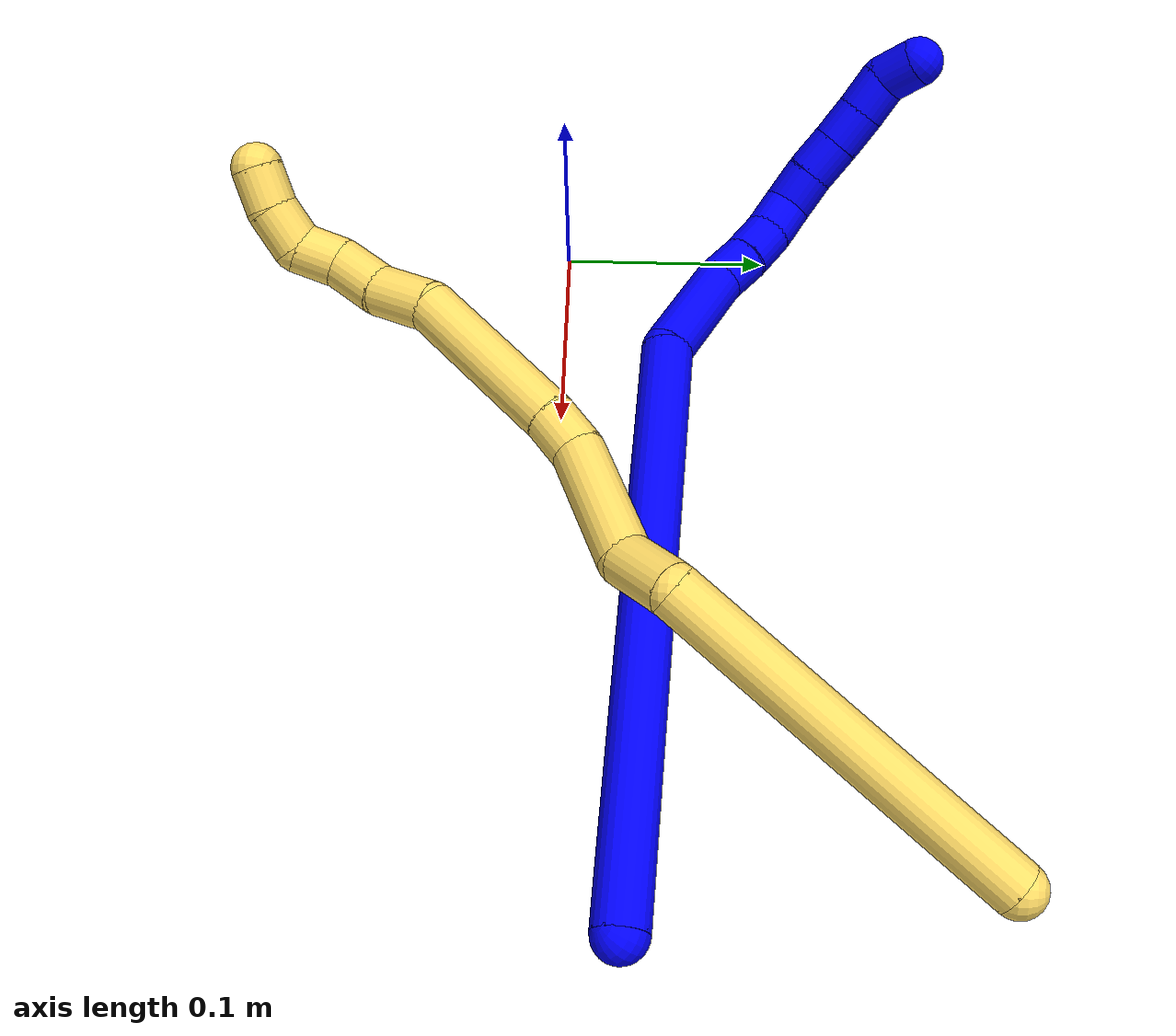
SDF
<sdf version="1.7">
 <world name="default">
  <model name="1">
   <static>0</static>
   <link name="1">
    <collision name="collision-cylinder-e_1_1_4">
     <pose>-0.137871 0.019291 0.017713 -0.828016 -1.38308 0.697822</pose>
     <geometry><cylinder><radius>0.0125</radius><length>0.280673</length></cylinder></geometry>
     <surface>
      <friction><ode><mu>1.16</mu><mu2>1.16</mu2><slip1>0</slip1><slip2>0</slip2></ode></friction>
      <contact><ode><kp>1e+06</kp><kd>1</kd><max_vel>0</max_vel><min_depth>0.001</min_depth></ode></contact>
     </surface>
    </collision>
    <visual name="visual-cylinder-e_1_1_4">
     <pose>-0.137871 0.019291 0.017713 -0.828016 -1.38308 0.697822</pose>
     <geometry><cylinder><radius>0.0125</radius><length>0.280673</length></cylinder></geometry>
     <material><ambient>0 0 1 1</ambient></material>
    </visual>
    <collision name="collision-cylinder-e_2_4_5">
     <pose>-0.302172 0.045808 0.026489 -2.46166 -1.16062 2.15212</pose>
     <geometry><cylinder><radius>0.0125</radius><length>0.057641</length></cylinder></geometry>
     <surface>
      <friction><ode><mu>1.16</mu><mu2>1.16</mu2><slip1>0</slip1><slip2>0</slip2></ode></friction>
      <contact><ode><kp>1e+06</kp><kd>1</kd><max_vel>0</max_vel><min_depth>0.001</min_depth></ode></contact>
     </surface>
    </collision>
    <visual name="visual-cylinder-e_2_4_5">
     <pose>-0.302172 0.045808 0.026489 -2.46166 -1.16062 2.15212</pose>
     <geometry><cylinder><radius>0.0125</radius><length>0.057641</length></cylinder></geometry>
     <material><ambient>0 0 1 1</ambient></material>
    </visual>
    <collision name="collision-cylinder-e_3_5_6">
     <pose>-0.336591 0.058175 0.013729 -2.21019 -0.894847 1.52462</pose>
     <geometry><cylinder><radius>0.0125</radius><length>0.020479</length></cylinder></geometry>
     <surface>
      <friction><ode><mu>1.16</mu><mu2>1.16</mu2><slip1>0</slip1><slip2>0</slip2></ode></friction>
      <contact><ode><kp>1e+06</kp><kd>1</kd><max_vel>0</max_vel><min_depth>0.001</min_depth></ode></contact>
     </surface>
    </collision>
    <visual name="visual-cylinder-e_3_5_6">
     <pose>-0.336591 0.058175 0.013729 -2.21019 -0.894847 1.52462</pose>
     <geometry><cylinder><radius>0.0125</radius><length>0.020479</length></cylinder></geometry>
     <material><ambient>0 0 1 1</ambient></material>
    </visual>
    <collision name="collision-cylinder-e_4_6_7">
     <pose>-0.353356 0.067948 0.006666 -2.18118 -0.998525 1.61669</pose>
     <geometry><cylinder><radius>0.0125</radius><length>0.020881</length></cylinder></geometry>
     <surface>
      <friction><ode><mu>1.16</mu><mu2>1.16</mu2><slip1>0</slip1><slip2>0</slip2></ode></friction>
      <contact><ode><kp>1e+06</kp><kd>1</kd><max_vel>0</max_vel><min_depth>0.001</min_depth></ode></contact>
     </surface>
    </collision>
    <visual name="visual-cylinder-e_4_6_7">
     <pose>-0.353356 0.067948 0.006666 -2.18118 -0.998525 1.61669</pose>
     <geometry><cylinder><radius>0.0125</radius><length>0.020881</length></cylinder></geometry>
     <material><ambient>0 0 1 1</ambient></material>
    </visual>
    <collision name="collision-cylinder-e_5_7_8">
     <pose>-0.370454 0.077964 0.001933 -1.84121 -0.979668 1.2229</pose>
     <geometry><cylinder><radius>0.0125</radius><length>0.020045</length></cylinder></geometry>
     <surface>
      <friction><ode><mu>1.16</mu><mu2>1.16</mu2><slip1>0</slip1><slip2>0</slip2></ode></friction>
      <contact><ode><kp>1e+06</kp><kd>1</kd><max_vel>0</max_vel><min_depth>0.001</min_depth></ode></contact>
     </surface>
    </collision>
    <visual name="visual-cylinder-e_5_7_8">
     <pose>-0.370454 0.077964 0.001933 -1.84121 -0.979668 1.2229</pose>
     <geometry><cylinder><radius>0.0125</radius><length>0.020045</length></cylinder></geometry>
     <material><ambient>0 0 1 1</ambient></material>
    </visual>
    <collision name="collision-cylinder-e_6_8_9">
     <pose>-0.383831 0.092052 0.001213 -1.48228 -0.524315 0.481616</pose>
     <geometry><cylinder><radius>0.0125</radius><length>0.020192</length></cylinder></geometry>
     <surface>
      <friction><ode><mu>1.16</mu><mu2>1.16</mu2><slip1>0</slip1><slip2>0</slip2></ode></friction>
      <contact><ode><kp>1e+06</kp><kd>1</kd><max_vel>0</max_vel><min_depth>0.001</min_depth></ode></contact>
     </surface>
    </collision>
    <visual name="visual-cylinder-e_6_8_9">
     <pose>-0.383831 0.092052 0.001213 -1.48228 -0.524315 0.481616</pose>
     <geometry><cylinder><radius>0.0125</radius><length>0.020192</length></cylinder></geometry>
     <material><ambient>0 0 1 1</ambient></material>
    </visual>
    <collision name="collision-cylinder-e_7_9_10">
     <pose>-0.393488 0.109648 0.002005 -1.56868 -0.477736 0.476765</pose>
     <geometry><cylinder><radius>0.0125</radius><length>0.020023</length></cylinder></geometry>
     <surface>
      <friction><ode><mu>1.16</mu><mu2>1.16</mu2><slip1>0</slip1><slip2>0</slip2></ode></friction>
      <contact><ode><kp>1e+06</kp><kd>1</kd><max_vel>0</max_vel><min_depth>0.001</min_depth></ode></contact>
     </surface>
    </collision>
    <visual name="visual-cylinder-e_7_9_10">
     <pose>-0.393488 0.109648 0.002005 -1.56868 -0.477736 0.476765</pose>
     <geometry><cylinder><radius>0.0125</radius><length>0.020023</length></cylinder></geometry>
     <material><ambient>0 0 1 1</ambient></material>
    </visual>
    <collision name="collision-cylinder-e_8_10_11">
     <pose>-0.402715 0.127424 0.002408 -1.52756 -0.47942 0.45985</pose>
     <geometry><cylinder><radius>0.0125</radius><length>0.020048</length></cylinder></geometry>
     <surface>
      <friction><ode><mu>1.16</mu><mu2>1.16</mu2><slip1>0</slip1><slip2>0</slip2></ode></friction>
      <contact><ode><kp>1e+06</kp><kd>1</kd><max_vel>0</max_vel><min_depth>0.001</min_depth></ode></contact>
     </surface>
    </collision>
    <visual name="visual-cylinder-e_8_10_11">
     <pose>-0.402715 0.127424 0.002408 -1.52756 -0.47942 0.45985</pose>
     <geometry><cylinder><radius>0.0125</radius><length>0.020048</length></cylinder></geometry>
     <material><ambient>0 0 1 1</ambient></material>
    </visual>
    <collision name="collision-cylinder-e_9_11_12">
     <pose>-0.411768 0.145226 0.003741 -1.46478 -0.458835 0.413978</pose>
     <geometry><cylinder><radius>0.0125</radius><length>0.020003</length></cylinder></geometry>
     <surface>
      <friction><ode><mu>1.16</mu><mu2>1.16</mu2><slip1>0</slip1><slip2>0</slip2></ode></friction>
      <contact><ode><kp>1e+06</kp><kd>1</kd><max_vel>0</max_vel><min_depth>0.001</min_depth></ode></contact>
     </surface>
    </collision>
    <visual name="visual-cylinder-e_9_11_12">
     <pose>-0.411768 0.145226 0.003741 -1.46478 -0.458835 0.413978</pose>
     <geometry><cylinder><radius>0.0125</radius><length>0.020003</length></cylinder></geometry>
     <material><ambient>0 0 1 1</ambient></material>
    </visual>
    <collision name="collision-cylinder-e_10_12_2">
     <pose>-0.415349 0.164022 0.003335 -1.70711 0.084923 -0.097348</pose>
     <geometry><cylinder><radius>0.0125</radius><length>0.020014</length></cylinder></geometry>
     <surface>
      <friction><ode><mu>1.16</mu><mu2>1.16</mu2><slip1>0</slip1><slip2>0</slip2></ode></friction>
      <contact><ode><kp>1e+06</kp><kd>1</kd><max_vel>0</max_vel><min_depth>0.001</min_depth></ode></contact>
     </surface>
    </collision>
    <visual name="visual-cylinder-e_10_12_2">
     <pose>-0.415349 0.164022 0.003335 -1.70711 0.084923 -0.097348</pose>
     <geometry><cylinder><radius>0.0125</radius><length>0.020014</length></cylinder></geometry>
     <material><ambient>0 0 1 1</ambient></material>
    </visual>
    <collision name="collision-sphere-2">
     <pose>-0.4145 0.1739 0.00198 0 -0 0</pose>
     <geometry><sphere><radius>0.0125</radius></sphere></geometry>
     <surface>
      <friction><ode><mu>1.16</mu><mu2>1.16</mu2><slip1>0</slip1><slip2>0</slip2></ode></friction>
      <contact><ode><kp>1e+06</kp><kd>1</kd><max_vel>0</max_vel><min_depth>0.001</min_depth></ode></contact>
     </surface>
    </collision>
    <visual name="visual-sphere-2">
     <pose>-0.4145 0.1739 0.00198 0 -0 0</pose>
     <geometry><sphere><radius>0.0125</radius></sphere></geometry>
     <material><ambient>0 0 1 1</ambient></material>
    </visual>
    <collision name="collision-sphere-12">
     <pose>-0.416198 0.154143 0.00469 0 -0 0</pose>
     <geometry><sphere><radius>0.0125</radius></sphere></geometry>
     <surface>
      <friction><ode><mu>1.16</mu><mu2>1.16</mu2><slip1>0</slip1><slip2>0</slip2></ode></friction>
      <contact><ode><kp>1e+06</kp><kd>1</kd><max_vel>0</max_vel><min_depth>0.001</min_depth></ode></contact>
     </surface>
    </collision>
    <visual name="visual-sphere-12">
     <pose>-0.416198 0.154143 0.00469 0 -0 0</pose>
     <geometry><sphere><radius>0.0125</radius></sphere></geometry>
     <material><ambient>0 0 1 1</ambient></material>
    </visual>
    <collision name="collision-sphere-11">
     <pose>-0.407338 0.13631 0.002792 0 -0 0</pose>
     <geometry><sphere><radius>0.0125</radius></sphere></geometry>
     <surface>
      <friction><ode><mu>1.16</mu><mu2>1.16</mu2><slip1>0</slip1><slip2>0</slip2></ode></friction>
      <contact><ode><kp>1e+06</kp><kd>1</kd><max_vel>0</max_vel><min_depth>0.001</min_depth></ode></contact>
     </surface>
    </collision>
    <visual name="visual-sphere-11">
     <pose>-0.407338 0.13631 0.002792 0 -0 0</pose>
     <geometry><sphere><radius>0.0125</radius></sphere></geometry>
     <material><ambient>0 0 1 1</ambient></material>
    </visual>
    <collision name="collision-sphere-10">
     <pose>-0.398091 0.118539 0.002024 0 -0 0</pose>
     <geometry><sphere><radius>0.0125</radius></sphere></geometry>
     <surface>
      <friction><ode><mu>1.16</mu><mu2>1.16</mu2><slip1>0</slip1><slip2>0</slip2></ode></friction>
      <contact><ode><kp>1e+06</kp><kd>1</kd><max_vel>0</max_vel><min_depth>0.001</min_depth></ode></contact>
     </surface>
    </collision>
    <visual name="visual-sphere-10">
     <pose>-0.398091 0.118539 0.002024 0 -0 0</pose>
     <geometry><sphere><radius>0.0125</radius></sphere></geometry>
     <material><ambient>0 0 1 1</ambient></material>
    </visual>
    <collision name="collision-sphere-9">
     <pose>-0.388885 0.100758 0.001986 0 -0 0</pose>
     <geometry><sphere><radius>0.0125</radius></sphere></geometry>
     <surface>
      <friction><ode><mu>1.16</mu><mu2>1.16</mu2><slip1>0</slip1><slip2>0</slip2></ode></friction>
      <contact><ode><kp>1e+06</kp><kd>1</kd><max_vel>0</max_vel><min_depth>0.001</min_depth></ode></contact>
     </surface>
    </collision>
    <visual name="visual-sphere-9">
     <pose>-0.388885 0.100758 0.001986 0 -0 0</pose>
     <geometry><sphere><radius>0.0125</radius></sphere></geometry>
     <material><ambient>0 0 1 1</ambient></material>
    </visual>
    <collision name="collision-sphere-4">
     <pose>-0.275742 0.038582 0.035426 0 -0 0</pose>
     <geometry><sphere><radius>0.0125</radius></sphere></geometry>
     <surface>
      <friction><ode><mu>1.16</mu><mu2>1.16</mu2><slip1>0</slip1><slip2>0</slip2></ode></friction>
      <contact><ode><kp>1e+06</kp><kd>1</kd><max_vel>0</max_vel><min_depth>0.001</min_depth></ode></contact>
     </surface>
    </collision>
    <visual name="visual-sphere-4">
     <pose>-0.275742 0.038582 0.035426 0 -0 0</pose>
     <geometry><sphere><radius>0.0125</radius></sphere></geometry>
     <material><ambient>0 0 1 1</ambient></material>
    </visual>
    <collision name="collision-sphere-1">
     <geometry><sphere><radius>0.0125</radius></sphere></geometry>
     <surface>
      <friction><ode><mu>1.16</mu><mu2>1.16</mu2><slip1>0</slip1><slip2>0</slip2></ode></friction>
      <contact><ode><kp>1e+06</kp><kd>1</kd><max_vel>0</max_vel><min_depth>0.001</min_depth></ode></contact>
     </surface>
    </collision>
    <visual name="visual-sphere-1">
     <geometry><sphere><radius>0.0125</radius></sphere></geometry>
     <material><ambient>0 0 1 1</ambient></material>
    </visual>
    <collision name="collision-sphere-8">
     <pose>-0.378776 0.083347 0.000441 0 -0 0</pose>
     <geometry><sphere><radius>0.0125</radius></sphere></geometry>
     <surface>
      <friction><ode><mu>1.16</mu><mu2>1.16</mu2><slip1>0</slip1><slip2>0</slip2></ode></friction>
      <contact><ode><kp>1e+06</kp><kd>1</kd><max_vel>0</max_vel><min_depth>0.001</min_depth></ode></contact>
     </surface>
    </collision>
    <visual name="visual-sphere-8">
     <pose>-0.378776 0.083347 0.000441 0 -0 0</pose>
     <geometry><sphere><radius>0.0125</radius></sphere></geometry>
     <material><ambient>0 0 1 1</ambient></material>
    </visual>
    <collision name="collision-sphere-5">
     <pose>-0.328602 0.053034 0.017552 0 -0 0</pose>
     <geometry><sphere><radius>0.0125</radius></sphere></geometry>
     <surface>
      <friction><ode><mu>1.16</mu><mu2>1.16</mu2><slip1>0</slip1><slip2>0</slip2></ode></friction>
      <contact><ode><kp>1e+06</kp><kd>1</kd><max_vel>0</max_vel><min_depth>0.001</min_depth></ode></contact>
     </surface>
    </collision>
    <visual name="visual-sphere-5">
     <pose>-0.328602 0.053034 0.017552 0 -0 0</pose>
     <geometry><sphere><radius>0.0125</radius></sphere></geometry>
     <material><ambient>0 0 1 1</ambient></material>
    </visual>
    <collision name="collision-sphere-6">
     <pose>-0.344579 0.063315 0.009906 0 -0 0</pose>
     <geometry><sphere><radius>0.0125</radius></sphere></geometry>
     <surface>
      <friction><ode><mu>1.16</mu><mu2>1.16</mu2><slip1>0</slip1><slip2>0</slip2></ode></friction>
      <contact><ode><kp>1e+06</kp><kd>1</kd><max_vel>0</max_vel><min_depth>0.001</min_depth></ode></contact>
     </surface>
    </collision>
    <visual name="visual-sphere-6">
     <pose>-0.344579 0.063315 0.009906 0 -0 0</pose>
     <geometry><sphere><radius>0.0125</radius></sphere></geometry>
     <material><ambient>0 0 1 1</ambient></material>
    </visual>
    <collision name="collision-sphere-7">
     <pose>-0.362133 0.072581 0.003425 0 -0 0</pose>
     <geometry><sphere><radius>0.0125</radius></sphere></geometry>
     <surface>
      <friction><ode><mu>1.16</mu><mu2>1.16</mu2><slip1>0</slip1><slip2>0</slip2></ode></friction>
      <contact><ode><kp>1e+06</kp><kd>1</kd><max_vel>0</max_vel><min_depth>0.001</min_depth></ode></contact>
     </surface>
    </collision>
    <visual name="visual-sphere-7">
     <pose>-0.362133 0.072581 0.003425 0 -0 0</pose>
     <geometry><sphere><radius>0.0125</radius></sphere></geometry>
     <material><ambient>0 0 1 1</ambient></material>
    </visual>
    <inertial>
     <pose>-0.236128 0.050049 0.014424 0 -0 0</pose>
     <mass>0.5</mass>
     <inertia>
      <ixx>0.000468</ixx>
      <ixy>0</ixy>
      <ixz>0</ixz>
      <iyy>0.00209</iyy>
      <iyz>0</iyz>
      <izz>0.001576</izz>
     </inertia>
    </inertial>
   </link>
   <pose>0.351186 0.033736 0.011631 0.845478 -0.155348 -0.064842</pose>
  </model>
  <model name="5">
   <static>0</static>
   <link name="5">
    <collision name="collision-cylinder-e_1_1_4">
     <pose>0.00503 -0.054079 -0.072848 2.50301 0.055382 0.167169</pose>
     <geometry><cylinder><radius>0.0125</radius><length>0.181732</length></cylinder></geometry>
     <surface>
      <friction><ode><mu>1.16</mu><mu2>1.16</mu2><slip1>0</slip1><slip2>0</slip2></ode></friction>
      <contact><ode><kp>1e+06</kp><kd>1</kd><max_vel>0</max_vel><min_depth>0.001</min_depth></ode></contact>
     </surface>
    </collision>
    <visual name="visual-cylinder-e_1_1_4">
     <pose>0.00503 -0.054079 -0.072848 2.50301 0.055382 0.167169</pose>
     <geometry><cylinder><radius>0.0125</radius><length>0.181732</length></cylinder></geometry>
     <material><ambient>1 0.858824 0.4 1</ambient></material>
    </visual>
    <collision name="collision-cylinder-e_2_4_5">
     <pose>0.002171 -0.112694 -0.157628 2.77821 -0.55354 -1.99342</pose>
     <geometry><cylinder><radius>0.0125</radius><length>0.030011</length></cylinder></geometry>
     <surface>
      <friction><ode><mu>1.16</mu><mu2>1.16</mu2><slip1>0</slip1><slip2>0</slip2></ode></friction>
      <contact><ode><kp>1e+06</kp><kd>1</kd><max_vel>0</max_vel><min_depth>0.001</min_depth></ode></contact>
     </surface>
    </collision>
    <visual name="visual-cylinder-e_2_4_5">
     <pose>0.002171 -0.112694 -0.157628 2.77821 -0.55354 -1.99342</pose>
     <geometry><cylinder><radius>0.0125</radius><length>0.030011</length></cylinder></geometry>
     <material><ambient>1 0.858824 0.4 1</ambient></material>
    </visual>
    <collision name="collision-cylinder-e_3_5_6">
     <pose>-0.02188 -0.138351 -0.185085 2.20473 -0.552514 -1.02143</pose>
     <geometry><cylinder><radius>0.0125</radius><length>0.06159</length></cylinder></geometry>
     <surface>
      <friction><ode><mu>1.16</mu><mu2>1.16</mu2><slip1>0</slip1><slip2>0</slip2></ode></friction>
      <contact><ode><kp>1e+06</kp><kd>1</kd><max_vel>0</max_vel><min_depth>0.001</min_depth></ode></contact>
     </surface>
    </collision>
    <visual name="visual-cylinder-e_3_5_6">
     <pose>-0.02188 -0.138351 -0.185085 2.20473 -0.552514 -1.02143</pose>
     <geometry><cylinder><radius>0.0125</radius><length>0.06159</length></cylinder></geometry>
     <material><ambient>1 0.858824 0.4 1</ambient></material>
    </visual>
    <collision name="collision-cylinder-e_4_6_7">
     <pose>-0.040675 -0.166651 -0.20837 2.39488 -0.244149 -0.607023</pose>
     <geometry><cylinder><radius>0.0125</radius><length>0.021788</length></cylinder></geometry>
     <surface>
      <friction><ode><mu>1.16</mu><mu2>1.16</mu2><slip1>0</slip1><slip2>0</slip2></ode></friction>
      <contact><ode><kp>1e+06</kp><kd>1</kd><max_vel>0</max_vel><min_depth>0.001</min_depth></ode></contact>
     </surface>
    </collision>
    <visual name="visual-cylinder-e_4_6_7">
     <pose>-0.040675 -0.166651 -0.20837 2.39488 -0.244149 -0.607023</pose>
     <geometry><cylinder><radius>0.0125</radius><length>0.021788</length></cylinder></geometry>
     <material><ambient>1 0.858824 0.4 1</ambient></material>
    </visual>
    <collision name="collision-cylinder-e_5_7_8">
     <pose>-0.05368 -0.197619 -0.249308 2.51959 -0.248782 -0.741979</pose>
     <geometry><cylinder><radius>0.0125</radius><length>0.084246</length></cylinder></geometry>
     <surface>
      <friction><ode><mu>1.16</mu><mu2>1.16</mu2><slip1>0</slip1><slip2>0</slip2></ode></friction>
      <contact><ode><kp>1e+06</kp><kd>1</kd><max_vel>0</max_vel><min_depth>0.001</min_depth></ode></contact>
     </surface>
    </collision>
    <visual name="visual-cylinder-e_5_7_8">
     <pose>-0.05368 -0.197619 -0.249308 2.51959 -0.248782 -0.741979</pose>
     <geometry><cylinder><radius>0.0125</radius><length>0.084246</length></cylinder></geometry>
     <material><ambient>1 0.858824 0.4 1</ambient></material>
    </visual>
    <collision name="collision-cylinder-e_6_8_9">
     <pose>-0.067167 -0.224669 -0.296483 2.9126 -0.213479 -1.50014</pose>
     <geometry><cylinder><radius>0.0125</radius><length>0.029406</length></cylinder></geometry>
     <surface>
      <friction><ode><mu>1.16</mu><mu2>1.16</mu2><slip1>0</slip1><slip2>0</slip2></ode></friction>
      <contact><ode><kp>1e+06</kp><kd>1</kd><max_vel>0</max_vel><min_depth>0.001</min_depth></ode></contact>
     </surface>
    </collision>
    <visual name="visual-cylinder-e_6_8_9">
     <pose>-0.067167 -0.224669 -0.296483 2.9126 -0.213479 -1.50014</pose>
     <geometry><cylinder><radius>0.0125</radius><length>0.029406</length></cylinder></geometry>
     <material><ambient>1 0.858824 0.4 1</ambient></material>
    </visual>
    <collision name="collision-cylinder-e_7_9_10">
     <pose>-0.073096 -0.234261 -0.322137 2.64422 -0.208979 -0.783272</pose>
     <geometry><cylinder><radius>0.0125</radius><length>0.027126</length></cylinder></geometry>
     <surface>
      <friction><ode><mu>1.16</mu><mu2>1.16</mu2><slip1>0</slip1><slip2>0</slip2></ode></friction>
      <contact><ode><kp>1e+06</kp><kd>1</kd><max_vel>0</max_vel><min_depth>0.001</min_depth></ode></contact>
     </surface>
    </collision>
    <visual name="visual-cylinder-e_7_9_10">
     <pose>-0.073096 -0.234261 -0.322137 2.64422 -0.208979 -0.783272</pose>
     <geometry><cylinder><radius>0.0125</radius><length>0.027126</length></cylinder></geometry>
     <material><ambient>1 0.858824 0.4 1</ambient></material>
    </visual>
    <collision name="collision-cylinder-e_8_10_11">
     <pose>-0.072255 -0.243678 -0.343628 2.83737 0.340894 1.68634</pose>
     <geometry><cylinder><radius>0.0125</radius><length>0.021865</length></cylinder></geometry>
     <surface>
      <friction><ode><mu>1.16</mu><mu2>1.16</mu2><slip1>0</slip1><slip2>0</slip2></ode></friction>
      <contact><ode><kp>1e+06</kp><kd>1</kd><max_vel>0</max_vel><min_depth>0.001</min_depth></ode></contact>
     </surface>
    </collision>
    <visual name="visual-cylinder-e_8_10_11">
     <pose>-0.072255 -0.243678 -0.343628 2.83737 0.340894 1.68634</pose>
     <geometry><cylinder><radius>0.0125</radius><length>0.021865</length></cylinder></geometry>
     <material><ambient>1 0.858824 0.4 1</ambient></material>
    </visual>
    <collision name="collision-cylinder-e_9_11_12">
     <pose>-0.065698 -0.255419 -0.359437 2.17537 0.26911 0.505108</pose>
     <geometry><cylinder><radius>0.0125</radius><length>0.021825</length></cylinder></geometry>
     <surface>
      <friction><ode><mu>1.16</mu><mu2>1.16</mu2><slip1>0</slip1><slip2>0</slip2></ode></friction>
      <contact><ode><kp>1e+06</kp><kd>1</kd><max_vel>0</max_vel><min_depth>0.001</min_depth></ode></contact>
     </surface>
    </collision>
    <visual name="visual-cylinder-e_9_11_12">
     <pose>-0.065698 -0.255419 -0.359437 2.17537 0.26911 0.505108</pose>
     <geometry><cylinder><radius>0.0125</radius><length>0.021825</length></cylinder></geometry>
     <material><ambient>1 0.858824 0.4 1</ambient></material>
    </visual>
    <collision name="collision-cylinder-e_10_12_2">
     <pose>-0.061014 -0.273431 -0.36908 1.94401 0.175604 0.256593</pose>
     <geometry><cylinder><radius>0.0125</radius><length>0.020411</length></cylinder></geometry>
     <surface>
      <friction><ode><mu>1.16</mu><mu2>1.16</mu2><slip1>0</slip1><slip2>0</slip2></ode></friction>
      <contact><ode><kp>1e+06</kp><kd>1</kd><max_vel>0</max_vel><min_depth>0.001</min_depth></ode></contact>
     </surface>
    </collision>
    <visual name="visual-cylinder-e_10_12_2">
     <pose>-0.061014 -0.273431 -0.36908 1.94401 0.175604 0.256593</pose>
     <geometry><cylinder><radius>0.0125</radius><length>0.020411</length></cylinder></geometry>
     <material><ambient>1 0.858824 0.4 1</ambient></material>
    </visual>
    <collision name="collision-sphere-2">
     <pose>-0.059231 -0.282788 -0.372744 0 -0 0</pose>
     <geometry><sphere><radius>0.0125</radius></sphere></geometry>
     <surface>
      <friction><ode><mu>1.16</mu><mu2>1.16</mu2><slip1>0</slip1><slip2>0</slip2></ode></friction>
      <contact><ode><kp>1e+06</kp><kd>1</kd><max_vel>0</max_vel><min_depth>0.001</min_depth></ode></contact>
     </surface>
    </collision>
    <visual name="visual-sphere-2">
     <pose>-0.059231 -0.282788 -0.372744 0 -0 0</pose>
     <geometry><sphere><radius>0.0125</radius></sphere></geometry>
     <material><ambient>1 0.858824 0.4 1</ambient></material>
    </visual>
    <collision name="collision-sphere-12">
     <pose>-0.062797 -0.264074 -0.365417 0 -0 0</pose>
     <geometry><sphere><radius>0.0125</radius></sphere></geometry>
     <surface>
      <friction><ode><mu>1.16</mu><mu2>1.16</mu2><slip1>0</slip1><slip2>0</slip2></ode></friction>
      <contact><ode><kp>1e+06</kp><kd>1</kd><max_vel>0</max_vel><min_depth>0.001</min_depth></ode></contact>
     </surface>
    </collision>
    <visual name="visual-sphere-12">
     <pose>-0.062797 -0.264074 -0.365417 0 -0 0</pose>
     <geometry><sphere><radius>0.0125</radius></sphere></geometry>
     <material><ambient>1 0.858824 0.4 1</ambient></material>
    </visual>
    <collision name="collision-sphere-11">
     <pose>-0.0686 -0.246764 -0.353458 0 -0 0</pose>
     <geometry><sphere><radius>0.0125</radius></sphere></geometry>
     <surface>
      <friction><ode><mu>1.16</mu><mu2>1.16</mu2><slip1>0</slip1><slip2>0</slip2></ode></friction>
      <contact><ode><kp>1e+06</kp><kd>1</kd><max_vel>0</max_vel><min_depth>0.001</min_depth></ode></contact>
     </surface>
    </collision>
    <visual name="visual-sphere-11">
     <pose>-0.0686 -0.246764 -0.353458 0 -0 0</pose>
     <geometry><sphere><radius>0.0125</radius></sphere></geometry>
     <material><ambient>1 0.858824 0.4 1</ambient></material>
    </visual>
    <collision name="collision-sphere-10">
     <pose>-0.07591 -0.240591 -0.333798 0 -0 0</pose>
     <geometry><sphere><radius>0.0125</radius></sphere></geometry>
     <surface>
      <friction><ode><mu>1.16</mu><mu2>1.16</mu2><slip1>0</slip1><slip2>0</slip2></ode></friction>
      <contact><ode><kp>1e+06</kp><kd>1</kd><max_vel>0</max_vel><min_depth>0.001</min_depth></ode></contact>
     </surface>
    </collision>
    <visual name="visual-sphere-10">
     <pose>-0.07591 -0.240591 -0.333798 0 -0 0</pose>
     <geometry><sphere><radius>0.0125</radius></sphere></geometry>
     <material><ambient>1 0.858824 0.4 1</ambient></material>
    </visual>
    <collision name="collision-sphere-9">
     <pose>-0.070282 -0.22793 -0.310477 0 -0 0</pose>
     <geometry><sphere><radius>0.0125</radius></sphere></geometry>
     <surface>
      <friction><ode><mu>1.16</mu><mu2>1.16</mu2><slip1>0</slip1><slip2>0</slip2></ode></friction>
      <contact><ode><kp>1e+06</kp><kd>1</kd><max_vel>0</max_vel><min_depth>0.001</min_depth></ode></contact>
     </surface>
    </collision>
    <visual name="visual-sphere-9">
     <pose>-0.070282 -0.22793 -0.310477 0 -0 0</pose>
     <geometry><sphere><radius>0.0125</radius></sphere></geometry>
     <material><ambient>1 0.858824 0.4 1</ambient></material>
    </visual>
    <collision name="collision-sphere-4">
     <pose>0.010059 -0.108157 -0.145696 0 -0 0</pose>
     <geometry><sphere><radius>0.0125</radius></sphere></geometry>
     <surface>
      <friction><ode><mu>1.16</mu><mu2>1.16</mu2><slip1>0</slip1><slip2>0</slip2></ode></friction>
      <contact><ode><kp>1e+06</kp><kd>1</kd><max_vel>0</max_vel><min_depth>0.001</min_depth></ode></contact>
     </surface>
    </collision>
    <visual name="visual-sphere-4">
     <pose>0.010059 -0.108157 -0.145696 0 -0 0</pose>
     <geometry><sphere><radius>0.0125</radius></sphere></geometry>
     <material><ambient>1 0.858824 0.4 1</ambient></material>
    </visual>
    <collision name="collision-sphere-1">
     <geometry><sphere><radius>0.0125</radius></sphere></geometry>
     <surface>
      <friction><ode><mu>1.16</mu><mu2>1.16</mu2><slip1>0</slip1><slip2>0</slip2></ode></friction>
      <contact><ode><kp>1e+06</kp><kd>1</kd><max_vel>0</max_vel><min_depth>0.001</min_depth></ode></contact>
     </surface>
    </collision>
    <visual name="visual-sphere-1">
     <geometry><sphere><radius>0.0125</radius></sphere></geometry>
     <material><ambient>1 0.858824 0.4 1</ambient></material>
    </visual>
    <collision name="collision-sphere-8">
     <pose>-0.064052 -0.221407 -0.282489 0 -0 0</pose>
     <geometry><sphere><radius>0.0125</radius></sphere></geometry>
     <surface>
      <friction><ode><mu>1.16</mu><mu2>1.16</mu2><slip1>0</slip1><slip2>0</slip2></ode></friction>
      <contact><ode><kp>1e+06</kp><kd>1</kd><max_vel>0</max_vel><min_depth>0.001</min_depth></ode></contact>
     </surface>
    </collision>
    <visual name="visual-sphere-8">
     <pose>-0.064052 -0.221407 -0.282489 0 -0 0</pose>
     <geometry><sphere><radius>0.0125</radius></sphere></geometry>
     <material><ambient>1 0.858824 0.4 1</ambient></material>
    </visual>
    <collision name="collision-sphere-5">
     <pose>-0.005717 -0.117231 -0.169559 0 -0 0</pose>
     <geometry><sphere><radius>0.0125</radius></sphere></geometry>
     <surface>
      <friction><ode><mu>1.16</mu><mu2>1.16</mu2><slip1>0</slip1><slip2>0</slip2></ode></friction>
      <contact><ode><kp>1e+06</kp><kd>1</kd><max_vel>0</max_vel><min_depth>0.001</min_depth></ode></contact>
     </surface>
    </collision>
    <visual name="visual-sphere-5">
     <pose>-0.005717 -0.117231 -0.169559 0 -0 0</pose>
     <geometry><sphere><radius>0.0125</radius></sphere></geometry>
     <material><ambient>1 0.858824 0.4 1</ambient></material>
    </visual>
    <collision name="collision-sphere-6">
     <pose>-0.038042 -0.159471 -0.200612 0 -0 0</pose>
     <geometry><sphere><radius>0.0125</radius></sphere></geometry>
     <surface>
      <friction><ode><mu>1.16</mu><mu2>1.16</mu2><slip1>0</slip1><slip2>0</slip2></ode></friction>
      <contact><ode><kp>1e+06</kp><kd>1</kd><max_vel>0</max_vel><min_depth>0.001</min_depth></ode></contact>
     </surface>
    </collision>
    <visual name="visual-sphere-6">
     <pose>-0.038042 -0.159471 -0.200612 0 -0 0</pose>
     <geometry><sphere><radius>0.0125</radius></sphere></geometry>
     <material><ambient>1 0.858824 0.4 1</ambient></material>
    </visual>
    <collision name="collision-sphere-7">
     <pose>-0.043309 -0.173831 -0.216128 0 -0 0</pose>
     <geometry><sphere><radius>0.0125</radius></sphere></geometry>
     <surface>
      <friction><ode><mu>1.16</mu><mu2>1.16</mu2><slip1>0</slip1><slip2>0</slip2></ode></friction>
      <contact><ode><kp>1e+06</kp><kd>1</kd><max_vel>0</max_vel><min_depth>0.001</min_depth></ode></contact>
     </surface>
    </collision>
    <visual name="visual-sphere-7">
     <pose>-0.043309 -0.173831 -0.216128 0 -0 0</pose>
     <geometry><sphere><radius>0.0125</radius></sphere></geometry>
     <material><ambient>1 0.858824 0.4 1</ambient></material>
    </visual>
    <inertial>
     <pose>-0.027988 -0.14291 -0.19052 0 -0 0</pose>
     <mass>0.5</mass>
     <inertia>
      <ixx>0.000575</ixx>
      <ixy>0</ixy>
      <ixz>0</ixz>
      <iyy>-0.00042</iyy>
      <iyz>0</iyz>
      <izz>0.000324</izz>
     </inertia>
    </inertial>
   </link>
   <pose>0.329315 0.19233 0.011749 -1.33123 -0.928197 -0.347852</pose>
  </model>
 </world>
</sdf>
